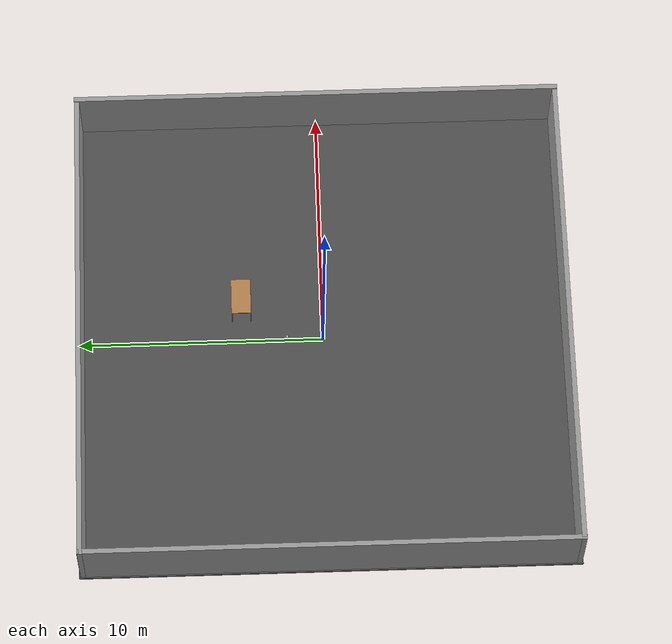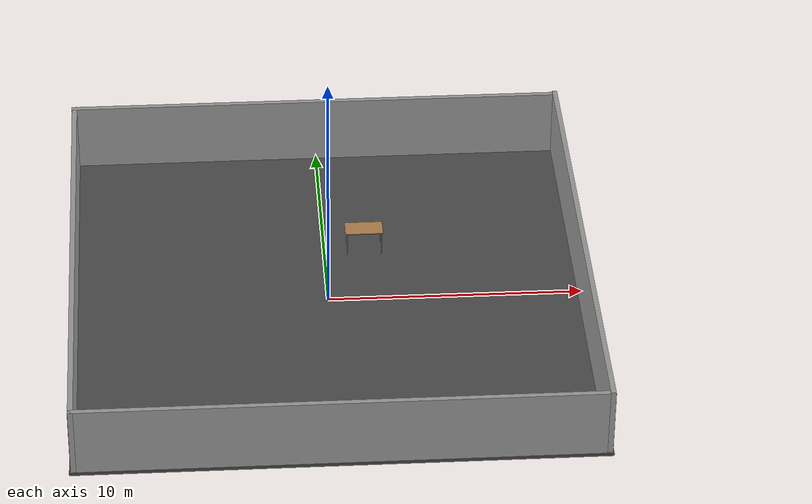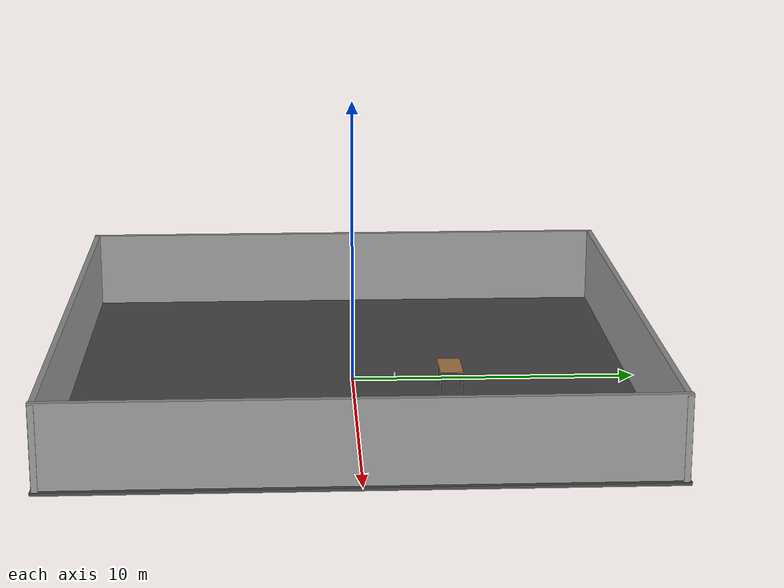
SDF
<sdf version="1.6">
 <world name="default">
  <light name="sun" type="directional">
   <pose>0 0 10 0 -0 0</pose>
   <diffuse>0.8 0.8 0.8 1</diffuse>
   <specular>0.2 0.2 0.2 1</specular>
   <attenuation>
    <range>1000</range>
    <constant>0.9</constant>
    <linear>0.01</linear>
    <quadratic>0.001</quadratic>
   </attenuation>
   <direction>-0.5 0.1 -0.9</direction>
  </light>
  <gravity>0 0 -9.8</gravity>
  <magnetic_field>6e-06 2.3e-05 -4.2e-05</magnetic_field>
  <atmosphere type="adiabatic"/>
  <physics name="default_physics" default="0" type="ode">
   <max_step_size>0.001</max_step_size>
   <real_time_factor>1</real_time_factor>
   <real_time_update_rate>1000</real_time_update_rate>
  </physics>
  <scene><ambient>0.4 0.4 0.4 1</ambient><background>0.7 0.7 0.7 1</background><shadows>1</shadows></scene>
  <audio><device>default</device></audio>
  <spherical_coordinates>
   <surface_model>EARTH_WGS84</surface_model>
   <latitude_deg>0</latitude_deg>
   <longitude_deg>0</longitude_deg>
   <elevation>0</elevation>
   <heading_deg>0</heading_deg>
  </spherical_coordinates>
  <model name="beer">
   <link name="link">
    <pose>0 0 0.115 0 -0 0</pose>
    <inertial>
     <mass>0.39</mass>
     <inertia><ixx>0.00058</ixx><ixy>0</ixy><ixz>0</ixz><iyy>0.00058</iyy><iyz>0</iyz><izz>0.00019</izz></inertia>
    </inertial>
    <collision name="collision">
     <geometry><cylinder><radius>0.055</radius><length>0.23</length></cylinder></geometry>
    </collision>
    <visual name="visual">
     <geometry><cylinder><radius>0.055</radius><length>0.23</length></cylinder></geometry>
     <material>
      <script>
       <uri>model://beer/materials/scripts</uri>
       <uri>model://beer/materials/textures</uri>
       <name>Beer/Diffuse</name>
      </script>
     </material>
    </visual>
   </link>
   <pose>0.068185 1.47838 0.050272 5e-06 1.6e-05 0.000567</pose>
  </model>
  <model name="table">
   <static>1</static>
   <link name="link">
    <collision name="surface">
     <pose>0 0 1 0 -0 0</pose>
     <geometry><box><size>1.5 0.8 0.03</size></box></geometry>
     <surface><friction><ode><mu>0.6</mu><mu2>0.6</mu2></ode></friction></surface>
    </collision>
    <visual name="visual1">
     <pose>0 0 1 0 -0 0</pose>
     <geometry><box><size>1.5 0.8 0.03</size></box></geometry>
     <material>
      <script><uri>file://media/materials/scripts/gazebo.material</uri><name>Gazebo/Wood</name></script>
     </material>
    </visual>
    <collision name="front_left_leg">
     <pose>0.68 0.38 0.5 0 -0 0</pose>
     <geometry><cylinder><radius>0.02</radius><length>1</length></cylinder></geometry>
    </collision>
    <visual name="front_left_leg">
     <pose>0.68 0.38 0.5 0 -0 0</pose>
     <geometry><cylinder><radius>0.02</radius><length>1</length></cylinder></geometry>
     <material>
      <script><uri>file://media/materials/scripts/gazebo.material</uri><name>Gazebo/Grey</name></script>
     </material>
    </visual>
    <collision name="front_right_leg">
     <pose>0.68 -0.38 0.5 0 -0 0</pose>
     <geometry><cylinder><radius>0.02</radius><length>1</length></cylinder></geometry>
    </collision>
    <visual name="front_right_leg">
     <pose>0.68 -0.38 0.5 0 -0 0</pose>
     <geometry><cylinder><radius>0.02</radius><length>1</length></cylinder></geometry>
     <material>
      <script><uri>file://media/materials/scripts/gazebo.material</uri><name>Gazebo/Grey</name></script>
     </material>
    </visual>
    <collision name="back_right_leg">
     <pose>-0.68 -0.38 0.5 0 -0 0</pose>
     <geometry><cylinder><radius>0.02</radius><length>1</length></cylinder></geometry>
    </collision>
    <visual name="back_right_leg">
     <pose>-0.68 -0.38 0.5 0 -0 0</pose>
     <geometry><cylinder><radius>0.02</radius><length>1</length></cylinder></geometry>
     <material>
      <script><uri>file://media/materials/scripts/gazebo.material</uri><name>Gazebo/Grey</name></script>
     </material>
    </visual>
    <collision name="back_left_leg">
     <pose>-0.68 0.38 0.5 0 -0 0</pose>
     <geometry><cylinder><radius>0.02</radius><length>1</length></cylinder></geometry>
    </collision>
    <visual name="back_left_leg">
     <pose>-0.68 0.38 0.5 0 -0 0</pose>
     <geometry><cylinder><radius>0.02</radius><length>1</length></cylinder></geometry>
     <material>
      <script><uri>file://media/materials/scripts/gazebo.material</uri><name>Gazebo/Grey</name></script>
     </material>
    </visual>
   </link>
   <pose>1.59612 3.32657 0 0 -0 0</pose>
  </model>
  <model name="asphalt_plane2">
   <link name="link">
    <inertial>
     <inertia><ixx>0</ixx><ixy>0</ixy><ixz>0</ixz><iyy>0</iyy><iyz>0</iyz><izz>0</izz></inertia>
     <mass>0</mass>
    </inertial>
    <visual name="visual">
     <cast_shadows>0</cast_shadows>
     <geometry><box><size>20.1125 20.1125 0.100561</size></box></geometry>
     <material>
      <script>
       <uri>model://asphalt_plane/materials/scripts</uri>
       <uri>model://asphalt_plane/materials/textures</uri>
       <name>vrc/asphalt</name>
      </script>
     </material>
    </visual>
    <collision name="collision">
     <geometry><box><size>20.1125 20.1125 0.100561</size></box></geometry>
     <surface>
      <friction>
       <ode><mu>1</mu><mu2>1</mu2><fdir1>0 0 0</fdir1><slip1>0</slip1><slip2>0</slip2></ode>
       <torsional>
        <coefficient>1</coefficient>
        <patch_radius>0</patch_radius>
        <surface_radius>0</surface_radius>
        <use_patch_radius>1</use_patch_radius>
        <ode><slip>0</slip></ode>
       </torsional>
      </friction>
      <bounce><restitution_coefficient>0</restitution_coefficient><threshold>1e+06</threshold></bounce>
      <contact>
       <collide_without_contact>0</collide_without_contact>
       <collide_without_contact_bitmask>1</collide_without_contact_bitmask>
       <collide_bitmask>1</collide_bitmask>
       <ode>
        <soft_cfm>0</soft_cfm>
        <soft_erp>0.2</soft_erp>
        <kp>1e+13</kp>
        <kd>1</kd>
        <max_vel>0.01</max_vel>
        <min_depth>0</min_depth>
       </ode>
       <bullet>
        <split_impulse>1</split_impulse>
        <split_impulse_penetration_threshold>-0.01</split_impulse_penetration_threshold>
        <soft_cfm>0</soft_cfm>
        <soft_erp>0.2</soft_erp>
        <kp>1e+13</kp>
        <kd>1</kd>
       </bullet>
      </contact>
     </surface>
    </collision>
   </link>
   <static>1</static>
   <pose>0 0 -0.04 0 -0 0</pose>
  </model>
  <model name="grey_wall_2">
   <link name="link">
    <pose>0 0 1.4 0 -0 0</pose>
    <inertial>
     <inertia><ixx>0</ixx><ixy>0</ixy><ixz>0</ixz><iyy>0</iyy><iyz>0</iyz><izz>0</izz></inertia>
     <mass>0</mass>
    </inertial>
    <visual name="visual">
     <cast_shadows>0</cast_shadows>
     <geometry><box><size>20.0176 0.2 2.8</size></box></geometry>
     <material>
      <script>
       <uri>model://grey_wall/materials/scripts</uri>
       <uri>model://grey_wall/materials/textures</uri>
       <name>vrc/grey_wall</name>
      </script>
     </material>
    </visual>
    <collision name="collision">
     <geometry><box><size>20.0176 0.2 2.8</size></box></geometry>
     <surface>
      <friction>
       <ode><mu>1</mu><mu2>1</mu2><fdir1>0 0 0</fdir1><slip1>0</slip1><slip2>0</slip2></ode>
       <torsional>
        <coefficient>1</coefficient>
        <patch_radius>0</patch_radius>
        <surface_radius>0</surface_radius>
        <use_patch_radius>1</use_patch_radius>
        <ode><slip>0</slip></ode>
       </torsional>
      </friction>
      <bounce><restitution_coefficient>0</restitution_coefficient><threshold>1e+06</threshold></bounce>
      <contact>
       <collide_without_contact>0</collide_without_contact>
       <collide_without_contact_bitmask>1</collide_without_contact_bitmask>
       <collide_bitmask>1</collide_bitmask>
       <ode>
        <soft_cfm>0</soft_cfm>
        <soft_erp>0.2</soft_erp>
        <kp>1e+13</kp>
        <kd>1</kd>
        <max_vel>0.01</max_vel>
        <min_depth>0</min_depth>
       </ode>
       <bullet>
        <split_impulse>1</split_impulse>
        <split_impulse_penetration_threshold>-0.01</split_impulse_penetration_threshold>
        <soft_cfm>0</soft_cfm>
        <soft_erp>0.2</soft_erp>
        <kp>1e+13</kp>
        <kd>1</kd>
       </bullet>
      </contact>
     </surface>
    </collision>
   </link>
   <static>1</static>
   <pose>9.9 0 0.051788 0 -0 1.5708</pose>
  </model>
  <model name="grey_wall_2_clone">
   <link name="link">
    <pose>0 0 1.4 0 -0 0</pose>
    <inertial>
     <inertia><ixx>0</ixx><ixy>0</ixy><ixz>0</ixz><iyy>0</iyy><iyz>0</iyz><izz>0</izz></inertia>
     <mass>0</mass>
    </inertial>
    <visual name="visual">
     <cast_shadows>0</cast_shadows>
     <geometry><box><size>20.0176 0.2 2.8</size></box></geometry>
     <material>
      <script>
       <uri>model://grey_wall/materials/scripts</uri>
       <uri>model://grey_wall/materials/textures</uri>
       <name>vrc/grey_wall</name>
      </script>
     </material>
    </visual>
    <collision name="collision">
     <geometry><box><size>20.0176 0.2 2.8</size></box></geometry>
     <surface>
      <friction>
       <ode><mu>1</mu><mu2>1</mu2><fdir1>0 0 0</fdir1><slip1>0</slip1><slip2>0</slip2></ode>
       <torsional>
        <coefficient>1</coefficient>
        <patch_radius>0</patch_radius>
        <surface_radius>0</surface_radius>
        <use_patch_radius>1</use_patch_radius>
        <ode><slip>0</slip></ode>
       </torsional>
      </friction>
      <bounce><restitution_coefficient>0</restitution_coefficient><threshold>1e+06</threshold></bounce>
      <contact>
       <collide_without_contact>0</collide_without_contact>
       <collide_without_contact_bitmask>1</collide_without_contact_bitmask>
       <collide_bitmask>1</collide_bitmask>
       <ode>
        <soft_cfm>0</soft_cfm>
        <soft_erp>0.2</soft_erp>
        <kp>1e+13</kp>
        <kd>1</kd>
        <max_vel>0.01</max_vel>
        <min_depth>0</min_depth>
       </ode>
       <bullet>
        <split_impulse>1</split_impulse>
        <split_impulse_penetration_threshold>-0.01</split_impulse_penetration_threshold>
        <soft_cfm>0</soft_cfm>
        <soft_erp>0.2</soft_erp>
        <kp>1e+13</kp>
        <kd>1</kd>
       </bullet>
      </contact>
     </surface>
    </collision>
   </link>
   <static>1</static>
   <pose>-9.9 0 0 0 -0 1.5708</pose>
  </model>
  <model name="grey_wall_2_clone_clone">
   <link name="link">
    <pose>0 0 1.4 0 -0 0</pose>
    <inertial>
     <inertia><ixx>0</ixx><ixy>0</ixy><ixz>0</ixz><iyy>0</iyy><iyz>0</iyz><izz>0</izz></inertia>
     <mass>0</mass>
    </inertial>
    <visual name="visual">
     <cast_shadows>0</cast_shadows>
     <geometry><box><size>20.0176 0.2 2.8</size></box></geometry>
     <material>
      <script>
       <uri>model://grey_wall/materials/scripts</uri>
       <uri>model://grey_wall/materials/textures</uri>
       <name>vrc/grey_wall</name>
      </script>
     </material>
    </visual>
    <collision name="collision">
     <geometry><box><size>20.0176 0.2 2.8</size></box></geometry>
     <surface>
      <friction>
       <ode><mu>1</mu><mu2>1</mu2><fdir1>0 0 0</fdir1><slip1>0</slip1><slip2>0</slip2></ode>
       <torsional>
        <coefficient>1</coefficient>
        <patch_radius>0</patch_radius>
        <surface_radius>0</surface_radius>
        <use_patch_radius>1</use_patch_radius>
        <ode><slip>0</slip></ode>
       </torsional>
      </friction>
      <bounce><restitution_coefficient>0</restitution_coefficient><threshold>1e+06</threshold></bounce>
      <contact>
       <collide_without_contact>0</collide_without_contact>
       <collide_without_contact_bitmask>1</collide_without_contact_bitmask>
       <collide_bitmask>1</collide_bitmask>
       <ode>
        <soft_cfm>0</soft_cfm>
        <soft_erp>0.2</soft_erp>
        <kp>1e+13</kp>
        <kd>1</kd>
        <max_vel>0.01</max_vel>
        <min_depth>0</min_depth>
       </ode>
       <bullet>
        <split_impulse>1</split_impulse>
        <split_impulse_penetration_threshold>-0.01</split_impulse_penetration_threshold>
        <soft_cfm>0</soft_cfm>
        <soft_erp>0.2</soft_erp>
        <kp>1e+13</kp>
        <kd>1</kd>
       </bullet>
      </contact>
     </surface>
    </collision>
   </link>
   <static>1</static>
   <pose>0 -9.9 0 0 -0 0</pose>
  </model>
  <model name="grey_wall_2_clone_clone_clone">
   <link name="link">
    <pose>0 0 1.4 0 -0 0</pose>
    <inertial>
     <inertia><ixx>0</ixx><ixy>0</ixy><ixz>0</ixz><iyy>0</iyy><iyz>0</iyz><izz>0</izz></inertia>
     <mass>0</mass>
    </inertial>
    <visual name="visual">
     <cast_shadows>0</cast_shadows>
     <geometry><box><size>20.0176 0.2 2.8</size></box></geometry>
     <material>
      <script>
       <uri>model://grey_wall/materials/scripts</uri>
       <uri>model://grey_wall/materials/textures</uri>
       <name>vrc/grey_wall</name>
      </script>
     </material>
    </visual>
    <collision name="collision">
     <geometry><box><size>20.0176 0.2 2.8</size></box></geometry>
     <surface>
      <friction>
       <ode><mu>1</mu><mu2>1</mu2><fdir1>0 0 0</fdir1><slip1>0</slip1><slip2>0</slip2></ode>
       <torsional>
        <coefficient>1</coefficient>
        <patch_radius>0</patch_radius>
        <surface_radius>0</surface_radius>
        <use_patch_radius>1</use_patch_radius>
        <ode><slip>0</slip></ode>
       </torsional>
      </friction>
      <bounce><restitution_coefficient>0</restitution_coefficient><threshold>1e+06</threshold></bounce>
      <contact>
       <collide_without_contact>0</collide_without_contact>
       <collide_without_contact_bitmask>1</collide_without_contact_bitmask>
       <collide_bitmask>1</collide_bitmask>
       <ode>
        <soft_cfm>0</soft_cfm>
        <soft_erp>0.2</soft_erp>
        <kp>1e+13</kp>
        <kd>1</kd>
        <max_vel>0.01</max_vel>
        <min_depth>0</min_depth>
       </ode>
       <bullet>
        <split_impulse>1</split_impulse>
        <split_impulse_penetration_threshold>-0.01</split_impulse_penetration_threshold>
        <soft_cfm>0</soft_cfm>
        <soft_erp>0.2</soft_erp>
        <kp>1e+13</kp>
        <kd>1</kd>
       </bullet>
      </contact>
     </surface>
    </collision>
   </link>
   <static>1</static>
   <pose>0 9.9 0 0 -0 0</pose>
  </model>
 </world>
</sdf>
